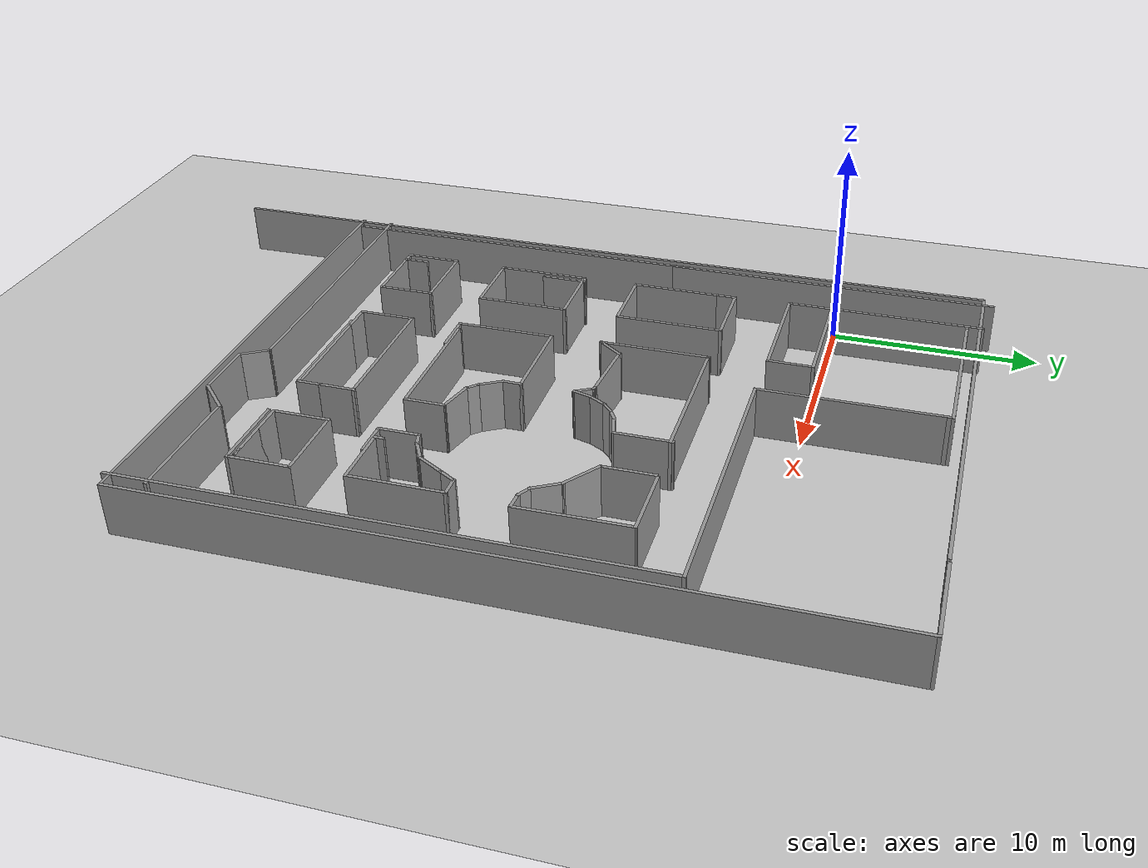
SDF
<sdf version="1.7">
 <world name="default">
  <model name="ground_plane">
   <static>1</static>
   <link name="link">
    <collision name="collision">
     <geometry><plane><normal>0 0 1</normal><size>100 100</size></plane></geometry>
     <surface>
      <contact><collide_bitmask>65535</collide_bitmask></contact>
      <friction><ode><mu>100</mu><mu2>50</mu2></ode></friction>
     </surface>
    </collision>
    <visual name="visual">
     <cast_shadows>0</cast_shadows>
     <geometry><plane><normal>0 0 1</normal><size>100 100</size></plane></geometry>
     <material>
      <script><uri>file://media/materials/scripts/gazebo.material</uri><name>Gazebo/Grey</name></script>
     </material>
    </visual>
   </link>
  </model>
  <model name="bariyers">
   <pose>11.2343 -12.5842 0 0 -0 0</pose>
   <link name="Wall_10">
    <collision name="Wall_10_Collision">
     <geometry><box><size>33.5 0.15 2.5</size></box></geometry>
     <pose>0 0 1.25 0 -0 0</pose>
    </collision>
    <visual name="Wall_10_Visual">
     <pose>0 0 1.25 0 -0 0</pose>
     <geometry><box><size>33.5 0.15 2.5</size></box></geometry>
     <material>
      <script><uri>file://media/materials/scripts/gazebo.material</uri><name>Gazebo/Grey</name></script>
      <ambient>1 1 1 1</ambient>
     </material>
     <meta><layer>0</layer></meta>
    </visual>
    <pose>12.5575 3.03271 0 0 -0 1.5708</pose>
   </link>
   <link name="Wall_100">
    <collision name="Wall_100_Collision">
     <geometry><box><size>1.75 0.15 2.5</size></box></geometry>
     <pose>0 0 1.25 0 -0 0</pose>
    </collision>
    <visual name="Wall_100_Visual">
     <pose>0 0 1.25 0 -0 0</pose>
     <geometry><box><size>1.75 0.15 2.5</size></box></geometry>
     <material>
      <script><uri>file://media/materials/scripts/gazebo.material</uri><name>Gazebo/Grey</name></script>
      <ambient>1 1 1 1</ambient>
     </material>
     <meta><layer>0</layer></meta>
    </visual>
    <pose>2.68549 -2.25618 0 0 -0 2.87979</pose>
   </link>
   <link name="Wall_101">
    <collision name="Wall_101_Collision">
     <geometry><box><size>0.75 0.15 2.5</size></box></geometry>
     <pose>0 0 1.25 0 -0 0</pose>
    </collision>
    <visual name="Wall_101_Visual">
     <pose>0 0 1.25 0 -0 0</pose>
     <geometry><box><size>0.75 0.15 2.5</size></box></geometry>
     <material>
      <script><uri>file://media/materials/scripts/gazebo.material</uri><name>Gazebo/Grey</name></script>
      <ambient>1 1 1 1</ambient>
     </material>
     <meta><layer>0</layer></meta>
    </visual>
    <pose>1.70062 -1.83699 0 0 -0 2.35619</pose>
   </link>
   <link name="Wall_102">
    <collision name="Wall_102_Collision">
     <geometry><box><size>1.25 0.15 2.5</size></box></geometry>
     <pose>0 0 1.25 0 -0 0</pose>
    </collision>
    <visual name="Wall_102_Visual">
     <pose>0 0 1.25 0 -0 0</pose>
     <geometry><box><size>1.25 0.15 2.5</size></box></geometry>
     <material>
      <script><uri>file://media/materials/scripts/gazebo.material</uri><name>Gazebo/Grey</name></script>
      <ambient>1 1 1 1</ambient>
     </material>
     <meta><layer>0</layer></meta>
    </visual>
    <pose>1.21349 -1.14855 0 0 -0 2.0944</pose>
   </link>
   <link name="Wall_103">
    <collision name="Wall_103_Collision">
     <geometry><box><size>1 0.15 2.5</size></box></geometry>
     <pose>0 0 1.25 0 -0 0</pose>
    </collision>
    <visual name="Wall_103_Visual">
     <pose>0 0 1.25 0 -0 0</pose>
     <geometry><box><size>1 0.15 2.5</size></box></geometry>
     <material>
      <script><uri>file://media/materials/scripts/gazebo.material</uri><name>Gazebo/Grey</name></script>
      <ambient>1 1 1 1</ambient>
     </material>
     <meta><layer>0</layer></meta>
    </visual>
    <pose>0.938488 -0.247233 0 0 -0 1.5708</pose>
   </link>
   <link name="Wall_104">
    <collision name="Wall_104_Collision">
     <geometry><box><size>4.5 0.15 2.5</size></box></geometry>
     <pose>0 0 1.25 0 -0 0</pose>
    </collision>
    <visual name="Wall_104_Visual">
     <pose>0 0 1.25 0 -0 0</pose>
     <geometry><box><size>4.5 0.15 2.5</size></box></geometry>
     <material>
      <script><uri>file://media/materials/scripts/gazebo.material</uri><name>Gazebo/Grey</name></script>
      <ambient>1 1 1 1</ambient>
     </material>
     <meta><layer>0</layer></meta>
    </visual>
    <pose>-1.23651 0.177767 0 0 -0 3.14159</pose>
   </link>
   <link name="Wall_105">
    <collision name="Wall_105_Collision">
     <geometry><box><size>4.75 0.15 2.5</size></box></geometry>
     <pose>0 0 1.25 0 -0 0</pose>
    </collision>
    <visual name="Wall_105_Visual">
     <pose>0 0 1.25 0 -0 0</pose>
     <geometry><box><size>4.75 0.15 2.5</size></box></geometry>
     <material>
      <script><uri>file://media/materials/scripts/gazebo.material</uri><name>Gazebo/Grey</name></script>
      <ambient>1 1 1 1</ambient>
     </material>
     <meta><layer>0</layer></meta>
    </visual>
    <pose>-3.41151 -2.12223 0 0 -0 -1.5708</pose>
   </link>
   <link name="Wall_106">
    <collision name="Wall_106_Collision">
     <geometry><box><size>2 0.15 2.5</size></box></geometry>
     <pose>0 0 1.25 0 -0 0</pose>
    </collision>
    <visual name="Wall_106_Visual">
     <pose>0 0 1.25 0 -0 0</pose>
     <geometry><box><size>2 0.15 2.5</size></box></geometry>
     <material>
      <script><uri>file://media/materials/scripts/gazebo.material</uri><name>Gazebo/Grey</name></script>
      <ambient>1 1 1 1</ambient>
     </material>
     <meta><layer>0</layer></meta>
    </visual>
    <pose>-2.48651 -4.42223 0 0 -0 0</pose>
   </link>
   <link name="Wall_109">
    <collision name="Wall_109_Collision">
     <geometry><box><size>8.5 0.15 2.5</size></box></geometry>
     <pose>0 0 1.25 0 -0 0</pose>
    </collision>
    <visual name="Wall_109_Visual">
     <pose>0 0 1.25 0 -0 0</pose>
     <geometry><box><size>8.5 0.15 2.5</size></box></geometry>
     <material>
      <script><uri>file://media/materials/scripts/gazebo.material</uri><name>Gazebo/Grey</name></script>
      <ambient>1 1 1 1</ambient>
     </material>
     <meta><layer>0</layer></meta>
    </visual>
    <pose>-1.45811 14.5463 0 0 -0 -1.5708</pose>
   </link>
   <link name="Wall_11">
    <collision name="Wall_11_Collision">
     <geometry><box><size>4.25 0.15 2.5</size></box></geometry>
     <pose>0 0 1.25 0 -0 0</pose>
    </collision>
    <visual name="Wall_11_Visual">
     <pose>0 0 1.25 0 -0 0</pose>
     <geometry><box><size>4.25 0.15 2.5</size></box></geometry>
     <material>
      <script><uri>file://media/materials/scripts/gazebo.material</uri><name>Gazebo/Grey</name></script>
      <ambient>1 1 1 1</ambient>
     </material>
     <meta><layer>0</layer></meta>
    </visual>
    <pose>10.5075 19.7077 0 0 -0 3.14159</pose>
   </link>
   <link name="Wall_110">
    <collision name="Wall_110_Collision">
     <geometry><box><size>13.4314 0.15 2.5</size></box></geometry>
     <pose>0 0 1.25 0 -0 0</pose>
    </collision>
    <visual name="Wall_110_Visual">
     <pose>0 0 1.25 0 -0 0</pose>
     <geometry><box><size>13.4314 0.15 2.5</size></box></geometry>
     <material>
      <script><uri>file://media/materials/scripts/gazebo.material</uri><name>Gazebo/Grey</name></script>
      <ambient>1 1 1 1</ambient>
     </material>
     <meta><layer>0</layer></meta>
    </visual>
    <pose>5.18256 10.3713 0 0 -0 0</pose>
   </link>
   <link name="Wall_111">
    <collision name="Wall_111_Collision">
     <geometry><box><size>24.5 0.15 2.5</size></box></geometry>
     <pose>0 0 1.25 0 -0 0</pose>
    </collision>
    <visual name="Wall_111_Visual">
     <pose>0 0 1.25 0 -0 0</pose>
     <geometry><box><size>24.5 0.15 2.5</size></box></geometry>
     <material>
      <script><uri>file://media/materials/scripts/gazebo.material</uri><name>Gazebo/Grey</name></script>
      <ambient>1 1 1 1</ambient>
     </material>
     <meta><layer>0</layer></meta>
    </visual>
    <pose>11.8232 -1.80369 0 0 -0 -1.5708</pose>
   </link>
   <link name="Wall_115">
    <collision name="Wall_115_Collision">
     <geometry><box><size>1.25 0.15 2.5</size></box></geometry>
     <pose>0 0 1.25 0 -0 0</pose>
    </collision>
    <visual name="Wall_115_Visual">
     <pose>0 0 1.25 0 -0 0</pose>
     <geometry><box><size>1.25 0.15 2.5</size></box></geometry>
     <material>
      <script><uri>file://media/materials/scripts/gazebo.material</uri><name>Gazebo/Grey</name></script>
      <ambient>1 1 1 1</ambient>
     </material>
     <meta><layer>0</layer></meta>
    </visual>
    <pose>3.00193 5.10047 0 0 -0 -2.87979</pose>
   </link>
   <link name="Wall_116">
    <collision name="Wall_116_Collision">
     <geometry><box><size>0.75 0.15 2.5</size></box></geometry>
     <pose>0 0 1.25 0 -0 0</pose>
    </collision>
    <visual name="Wall_116_Visual">
     <pose>0 0 1.25 0 -0 0</pose>
     <geometry><box><size>0.75 0.15 2.5</size></box></geometry>
     <material>
      <script><uri>file://media/materials/scripts/gazebo.material</uri><name>Gazebo/Grey</name></script>
      <ambient>1 1 1 1</ambient>
     </material>
     <meta><layer>0</layer></meta>
    </visual>
    <pose>2.21086 4.80812 0 0 -0 -2.61799</pose>
   </link>
   <link name="Wall_117">
    <collision name="Wall_117_Collision">
     <geometry><box><size>0.75 0.15 2.5</size></box></geometry>
     <pose>0 0 1.25 0 -0 0</pose>
    </collision>
    <visual name="Wall_117_Visual">
     <pose>0 0 1.25 0 -0 0</pose>
     <geometry><box><size>0.75 0.15 2.5</size></box></geometry>
     <material>
      <script><uri>file://media/materials/scripts/gazebo.material</uri><name>Gazebo/Grey</name></script>
      <ambient>1 1 1 1</ambient>
     </material>
     <meta><layer>0</layer></meta>
    </visual>
    <pose>1.73892 4.44599 0 0 -0 -2.35619</pose>
   </link>
   <link name="Wall_118">
    <collision name="Wall_118_Collision">
     <geometry><box><size>1 0.15 2.5</size></box></geometry>
     <pose>0 0 1.25 0 -0 0</pose>
    </collision>
    <visual name="Wall_118_Visual">
     <pose>0 0 1.25 0 -0 0</pose>
     <geometry><box><size>1 0.15 2.5</size></box></geometry>
     <material>
      <script><uri>file://media/materials/scripts/gazebo.material</uri><name>Gazebo/Grey</name></script>
      <ambient>1 1 1 1</ambient>
     </material>
     <meta><layer>0</layer></meta>
    </visual>
    <pose>1.31429 3.8658 0 0 -0 -2.0944</pose>
   </link>
   <link name="Wall_119">
    <collision name="Wall_119_Collision">
     <geometry><box><size>1 0.15 2.5</size></box></geometry>
     <pose>0 0 1.25 0 -0 0</pose>
    </collision>
    <visual name="Wall_119_Visual">
     <pose>0 0 1.25 0 -0 0</pose>
     <geometry><box><size>1 0.15 2.5</size></box></geometry>
     <material>
      <script><uri>file://media/materials/scripts/gazebo.material</uri><name>Gazebo/Grey</name></script>
      <ambient>1 1 1 1</ambient>
     </material>
     <meta><layer>0</layer></meta>
    </visual>
    <pose>0.991789 3.08722 0 0 -0 -1.8326</pose>
   </link>
   <link name="Wall_120">
    <collision name="Wall_120_Collision">
     <geometry><box><size>1 0.15 2.5</size></box></geometry>
     <pose>0 0 1.25 0 -0 0</pose>
    </collision>
    <visual name="Wall_120_Visual">
     <pose>0 0 1.25 0 -0 0</pose>
     <geometry><box><size>1 0.15 2.5</size></box></geometry>
     <material>
      <script><uri>file://media/materials/scripts/gazebo.material</uri><name>Gazebo/Grey</name></script>
      <ambient>1 1 1 1</ambient>
     </material>
     <meta><layer>0</layer></meta>
    </visual>
    <pose>0.669291 3.04476 0 0 -0 2.0944</pose>
   </link>
   <link name="Wall_121">
    <collision name="Wall_121_Collision">
     <geometry><box><size>0.25 0.15 2.5</size></box></geometry>
     <pose>0 0 1.25 0 -0 0</pose>
    </collision>
    <visual name="Wall_121_Visual">
     <pose>0 0 1.25 0 -0 0</pose>
     <geometry><box><size>0.25 0.15 2.5</size></box></geometry>
     <material>
      <script><uri>file://media/materials/scripts/gazebo.material</uri><name>Gazebo/Grey</name></script>
      <ambient>1 1 1 1</ambient>
     </material>
     <meta><layer>0</layer></meta>
    </visual>
    <pose>0.41349 3.43782 0 0 -0 2.61799</pose>
   </link>
   <link name="Wall_122">
    <collision name="Wall_122_Collision">
     <geometry><box><size>3.29431 0.15 2.5</size></box></geometry>
     <pose>0 0 1.25 0 -0 0</pose>
    </collision>
    <visual name="Wall_122_Visual">
     <pose>0 0 1.25 0 -0 0</pose>
     <geometry><box><size>3.29431 0.15 2.5</size></box></geometry>
     <material>
      <script><uri>file://media/materials/scripts/gazebo.material</uri><name>Gazebo/Grey</name></script>
      <ambient>1 1 1 1</ambient>
     </material>
     <meta><layer>0</layer></meta>
    </visual>
    <pose>-1.19703 3.58726 0 0 -0 3.06235</pose>
   </link>
   <link name="Wall_123">
    <collision name="Wall_123_Collision">
     <geometry><box><size>1.5149 0.15 2.5</size></box></geometry>
     <pose>0 0 1.25 0 -0 0</pose>
    </collision>
    <visual name="Wall_123_Visual">
     <pose>0 0 1.25 0 -0 0</pose>
     <geometry><box><size>1.5149 0.15 2.5</size></box></geometry>
     <material>
      <script><uri>file://media/materials/scripts/gazebo.material</uri><name>Gazebo/Grey</name></script>
      <ambient>1 1 1 1</ambient>
     </material>
     <meta><layer>0</layer></meta>
    </visual>
    <pose>-3.13489 3.1633 0 0 -0 -2.2083</pose>
   </link>
   <link name="Wall_128">
    <collision name="Wall_128_Collision">
     <geometry><box><size>2.75 0.15 2.5</size></box></geometry>
     <pose>0 0 1.25 0 -0 0</pose>
    </collision>
    <visual name="Wall_128_Visual">
     <pose>0 0 1.25 0 -0 0</pose>
     <geometry><box><size>2.75 0.15 2.5</size></box></geometry>
     <material>
      <script><uri>file://media/materials/scripts/gazebo.material</uri><name>Gazebo/Grey</name></script>
      <ambient>1 1 1 1</ambient>
     </material>
     <meta><layer>0</layer></meta>
    </visual>
    <pose>3.53319 6.54282 0 0 -0 1.5708</pose>
   </link>
   <link name="Wall_131">
    <collision name="Wall_131_Collision">
     <geometry><box><size>5.32111 0.15 2.5</size></box></geometry>
     <pose>0 0 1.25 0 -0 0</pose>
    </collision>
    <visual name="Wall_131_Visual">
     <pose>0 0 1.25 0 -0 0</pose>
     <geometry><box><size>5.32111 0.15 2.5</size></box></geometry>
     <material>
      <script><uri>file://media/materials/scripts/gazebo.material</uri><name>Gazebo/Grey</name></script>
      <ambient>1 1 1 1</ambient>
     </material>
     <meta><layer>0</layer></meta>
    </visual>
    <pose>-3.54107 5.20045 0 0 -0 1.5708</pose>
   </link>
   <link name="Wall_132">
    <collision name="Wall_132_Collision">
     <geometry><box><size>7.25 0.15 2.5</size></box></geometry>
     <pose>0 0 1.25 0 -0 0</pose>
    </collision>
    <visual name="Wall_132_Visual">
     <pose>0 0 1.25 0 -0 0</pose>
     <geometry><box><size>7.25 0.15 2.5</size></box></geometry>
     <material>
      <script><uri>file://media/materials/scripts/gazebo.material</uri><name>Gazebo/Grey</name></script>
      <ambient>1 1 1 1</ambient>
     </material>
     <meta><layer>0</layer></meta>
    </visual>
    <pose>0.008928 7.75045 0 0 -0 0</pose>
   </link>
   <link name="Wall_135">
    <collision name="Wall_135_Collision">
     <geometry><box><size>2.5 0.15 2.5</size></box></geometry>
     <pose>0 0 1.25 0 -0 0</pose>
    </collision>
    <visual name="Wall_135_Visual">
     <pose>0 0 1.25 0 -0 0</pose>
     <geometry><box><size>2.5 0.15 2.5</size></box></geometry>
     <material>
      <script><uri>file://media/materials/scripts/gazebo.material</uri><name>Gazebo/Grey</name></script>
      <ambient>1 1 1 1</ambient>
     </material>
     <meta><layer>0</layer></meta>
    </visual>
    <pose>6.01396 6.59675 0 0 -0 -1.5708</pose>
   </link>
   <link name="Wall_136">
    <collision name="Wall_136_Collision">
     <geometry><box><size>2.008 0.15 2.5</size></box></geometry>
     <pose>0 0 1.25 0 -0 0</pose>
    </collision>
    <visual name="Wall_136_Visual">
     <pose>0 0 1.25 0 -0 0</pose>
     <geometry><box><size>2.008 0.15 2.5</size></box></geometry>
     <material>
      <script><uri>file://media/materials/scripts/gazebo.material</uri><name>Gazebo/Grey</name></script>
      <ambient>1 1 1 1</ambient>
     </material>
     <meta><layer>0</layer></meta>
    </visual>
    <pose>6.79735 4.83551 0 0 -0 -0.634766</pose>
   </link>
   <link name="Wall_137">
    <collision name="Wall_137_Collision">
     <geometry><box><size>1.5 0.15 2.5</size></box></geometry>
     <pose>0 0 1.25 0 -0 0</pose>
    </collision>
    <visual name="Wall_137_Visual">
     <pose>0 0 1.25 0 -0 0</pose>
     <geometry><box><size>1.5 0.15 2.5</size></box></geometry>
     <material>
      <script><uri>file://media/materials/scripts/gazebo.material</uri><name>Gazebo/Grey</name></script>
      <ambient>1 1 1 1</ambient>
     </material>
     <meta><layer>0</layer></meta>
    </visual>
    <pose>7.8829 3.70006 0 0 -0 -1.0472</pose>
   </link>
   <link name="Wall_138">
    <collision name="Wall_138_Collision">
     <geometry><box><size>0.75 0.15 2.5</size></box></geometry>
     <pose>0 0 1.25 0 -0 0</pose>
    </collision>
    <visual name="Wall_138_Visual">
     <pose>0 0 1.25 0 -0 0</pose>
     <geometry><box><size>0.75 0.15 2.5</size></box></geometry>
     <material>
      <script><uri>file://media/materials/scripts/gazebo.material</uri><name>Gazebo/Grey</name></script>
      <ambient>1 1 1 1</ambient>
     </material>
     <meta><layer>0</layer></meta>
    </visual>
    <pose>8.4802 2.96549 0 0 -0 -0.523599</pose>
   </link>
   <link name="Wall_139">
    <collision name="Wall_139_Collision">
     <geometry><box><size>0.912152 0.15 2.5</size></box></geometry>
     <pose>0 0 1.25 0 -0 0</pose>
    </collision>
    <visual name="Wall_139_Visual">
     <pose>0 0 1.25 0 -0 0</pose>
     <geometry><box><size>0.912152 0.15 2.5</size></box></geometry>
     <material>
      <script><uri>file://media/materials/scripts/gazebo.material</uri><name>Gazebo/Grey</name></script>
      <ambient>1 1 1 1</ambient>
     </material>
     <meta><layer>0</layer></meta>
    </visual>
    <pose>9.12036 2.79188 0 0 -0 -0.061994</pose>
   </link>
   <link name="Wall_140">
    <collision name="Wall_140_Collision">
     <geometry><box><size>5.25 0.15 2.5</size></box></geometry>
     <pose>0 0 1.25 0 -0 0</pose>
    </collision>
    <visual name="Wall_140_Visual">
     <pose>0 0 1.25 0 -0 0</pose>
     <geometry><box><size>5.25 0.15 2.5</size></box></geometry>
     <material>
      <script><uri>file://media/materials/scripts/gazebo.material</uri><name>Gazebo/Grey</name></script>
      <ambient>1 1 1 1</ambient>
     </material>
     <meta><layer>0</layer></meta>
    </visual>
    <pose>9.51838 5.31827 0 0 -0 1.57981</pose>
   </link>
   <link name="Wall_143">
    <collision name="Wall_143_Collision">
     <geometry><box><size>3.5 0.15 2.5</size></box></geometry>
     <pose>0 0 1.25 0 -0 0</pose>
    </collision>
    <visual name="Wall_143_Visual">
     <pose>0 0 1.25 0 -0 0</pose>
     <geometry><box><size>3.5 0.15 2.5</size></box></geometry>
     <material>
      <script><uri>file://media/materials/scripts/gazebo.material</uri><name>Gazebo/Grey</name></script>
      <ambient>1 1 1 1</ambient>
     </material>
     <meta><layer>0</layer></meta>
    </visual>
    <pose>7.8204 7.86827 0 0 -0 3.14159</pose>
   </link>
   <link name="Wall_145">
    <collision name="Wall_145_Collision">
     <geometry><box><size>6 0.15 2.5</size></box></geometry>
     <pose>0 0 1.25 0 -0 0</pose>
    </collision>
    <visual name="Wall_145_Visual">
     <pose>0 0 1.25 0 -0 0</pose>
     <geometry><box><size>6 0.15 2.5</size></box></geometry>
     <material>
      <script><uri>file://media/materials/scripts/gazebo.material</uri><name>Gazebo/Grey</name></script>
      <ambient>1 1 1 1</ambient>
     </material>
     <meta><layer>0</layer></meta>
    </visual>
    <pose>9.05069 -11.9195 0 0 -0 3.14159</pose>
   </link>
   <link name="Wall_146">
    <collision name="Wall_146_Collision">
     <geometry><box><size>2 0.15 2.5</size></box></geometry>
     <pose>0 0 1.25 0 -0 0</pose>
    </collision>
    <visual name="Wall_146_Visual">
     <pose>0 0 1.25 0 -0 0</pose>
     <geometry><box><size>2 0.15 2.5</size></box></geometry>
     <material>
      <script><uri>file://media/materials/scripts/gazebo.material</uri><name>Gazebo/Grey</name></script>
      <ambient>1 1 1 1</ambient>
     </material>
     <meta><layer>0</layer></meta>
    </visual>
    <pose>5.47162 -12.5735 0 0 -0 -2.35619</pose>
   </link>
   <link name="Wall_147">
    <collision name="Wall_147_Collision">
     <geometry><box><size>3 0.15 2.5</size></box></geometry>
     <pose>0 0 1.25 0 -0 0</pose>
    </collision>
    <visual name="Wall_147_Visual">
     <pose>0 0 1.25 0 -0 0</pose>
     <geometry><box><size>3 0.15 2.5</size></box></geometry>
     <material>
      <script><uri>file://media/materials/scripts/gazebo.material</uri><name>Gazebo/Grey</name></script>
      <ambient>1 1 1 1</ambient>
     </material>
     <meta><layer>0</layer></meta>
    </visual>
    <pose>3.39254 -13.2276 0 0 -0 3.14159</pose>
   </link>
   <link name="Wall_148">
    <collision name="Wall_148_Collision">
     <geometry><box><size>1.5 0.15 2.5</size></box></geometry>
     <pose>0 0 1.25 0 -0 0</pose>
    </collision>
    <visual name="Wall_148_Visual">
     <pose>0 0 1.25 0 -0 0</pose>
     <geometry><box><size>1.5 0.15 2.5</size></box></geometry>
     <material>
      <script><uri>file://media/materials/scripts/gazebo.material</uri><name>Gazebo/Grey</name></script>
      <ambient>1 1 1 1</ambient>
     </material>
     <meta><layer>0</layer></meta>
    </visual>
    <pose>1.63004 -12.643 0 0 -0 2.0944</pose>
   </link>
   <link name="Wall_149">
    <collision name="Wall_149_Collision">
     <geometry><box><size>14 0.15 2.5</size></box></geometry>
     <pose>0 0 1.25 0 -0 0</pose>
    </collision>
    <visual name="Wall_149_Visual">
     <pose>0 0 1.25 0 -0 0</pose>
     <geometry><box><size>14 0.15 2.5</size></box></geometry>
     <material>
      <script><uri>file://media/materials/scripts/gazebo.material</uri><name>Gazebo/Grey</name></script>
      <ambient>1 1 1 1</ambient>
     </material>
     <meta><layer>0</layer></meta>
    </visual>
    <pose>-5.63246 -12.0585 0 0 -0 3.14159</pose>
   </link>
   <link name="Wall_151">
    <collision name="Wall_151_Collision">
     <geometry><box><size>16.25 0.15 2.5</size></box></geometry>
     <pose>0 0 1.25 0 -0 0</pose>
    </collision>
    <visual name="Wall_151_Visual">
     <pose>0 0 1.25 0 -0 0</pose>
     <geometry><box><size>16.25 0.15 2.5</size></box></geometry>
     <material>
      <script><uri>file://media/materials/scripts/gazebo.material</uri><name>Gazebo/Grey</name></script>
      <ambient>1 1 1 1</ambient>
     </material>
     <meta><layer>0</layer></meta>
    </visual>
    <pose>-11.8908 12.1142 0 0 -0 -1.5708</pose>
   </link>
   <link name="Wall_153">
    <collision name="Wall_153_Collision">
     <geometry><box><size>18.5 0.15 2.5</size></box></geometry>
     <pose>0 0 1.25 0 -0 0</pose>
    </collision>
    <visual name="Wall_153_Visual">
     <pose>0 0 1.25 0 -0 0</pose>
     <geometry><box><size>18.5 0.15 2.5</size></box></geometry>
     <material>
      <script><uri>file://media/materials/scripts/gazebo.material</uri><name>Gazebo/Grey</name></script>
      <ambient>1 1 1 1</ambient>
     </material>
     <meta><layer>0</layer></meta>
    </visual>
    <pose>-11.9257 -4.26302 0 0 -0 -1.5708</pose>
   </link>
   <link name="Wall_155">
    <collision name="Wall_155_Collision">
     <geometry><box><size>0.5 0.15 2.5</size></box></geometry>
     <pose>0 0 1.25 0 -0 0</pose>
    </collision>
    <visual name="Wall_155_Visual">
     <pose>0 0 1.25 0 -0 0</pose>
     <geometry><box><size>0.5 0.15 2.5</size></box></geometry>
     <material>
      <script><uri>file://media/materials/scripts/gazebo.material</uri><name>Gazebo/Grey</name></script>
      <ambient>1 1 1 1</ambient>
     </material>
     <meta><layer>0</layer></meta>
    </visual>
    <pose>-1.45811 18.8963 0 0 -0 1.5708</pose>
   </link>
   <link name="Wall_156">
    <collision name="Wall_156_Collision">
     <geometry><box><size>8 0.15 2.5</size></box></geometry>
     <pose>0 0 1.25 0 -0 0</pose>
    </collision>
    <visual name="Wall_156_Visual">
     <pose>0 0 1.25 0 -0 0</pose>
     <geometry><box><size>8 0.15 2.5</size></box></geometry>
     <material>
      <script><uri>file://media/materials/scripts/gazebo.material</uri><name>Gazebo/Grey</name></script>
      <ambient>1 1 1 1</ambient>
     </material>
     <meta><layer>0</layer></meta>
    </visual>
    <pose>-5.38311 19.0713 0 0 -0 3.14159</pose>
   </link>
   <link name="Wall_157">
    <collision name="Wall_157_Collision">
     <geometry><box><size>0.25 0.15 2.5</size></box></geometry>
     <pose>0 0 1.25 0 -0 0</pose>
    </collision>
    <visual name="Wall_157_Visual">
     <pose>0 0 1.25 0 -0 0</pose>
     <geometry><box><size>0.25 0.15 2.5</size></box></geometry>
     <material>
      <script><uri>file://media/materials/scripts/gazebo.material</uri><name>Gazebo/Grey</name></script>
      <ambient>1 1 1 1</ambient>
     </material>
     <meta><layer>0</layer></meta>
    </visual>
    <pose>-9.35811 19.0713 0 0 -0 3.14159</pose>
   </link>
   <link name="Wall_16">
    <collision name="Wall_16_Collision">
     <geometry><box><size>9.5 0.15 2.5</size></box></geometry>
     <pose>0 0 1.25 0 -0 0</pose>
    </collision>
    <visual name="Wall_16_Visual">
     <pose>0 0 1.25 0 -0 0</pose>
     <geometry><box><size>9.5 0.15 2.5</size></box></geometry>
     <material>
      <script><uri>file://media/materials/scripts/gazebo.material</uri><name>Gazebo/Grey</name></script>
      <ambient>1 1 1 1</ambient>
     </material>
     <meta><layer>0</layer></meta>
    </visual>
    <pose>-9.58443 15.1382 0 0 -0 -1.5708</pose>
   </link>
   <link name="Wall_17">
    <collision name="Wall_17_Collision">
     <geometry><box><size>5.75 0.15 2.5</size></box></geometry>
     <pose>0 0 1.25 0 -0 0</pose>
    </collision>
    <visual name="Wall_17_Visual">
     <pose>0 0 1.25 0 -0 0</pose>
     <geometry><box><size>5.75 0.15 2.5</size></box></geometry>
     <material>
      <script><uri>file://media/materials/scripts/gazebo.material</uri><name>Gazebo/Grey</name></script>
      <ambient>1 1 1 1</ambient>
     </material>
     <meta><layer>0</layer></meta>
    </visual>
    <pose>-6.78443 10.4632 0 0 -0 0</pose>
   </link>
   <link name="Wall_19">
    <collision name="Wall_19_Collision">
     <geometry><box><size>2.25 0.15 2.5</size></box></geometry>
     <pose>0 0 1.25 0 -0 0</pose>
    </collision>
    <visual name="Wall_19_Visual">
     <pose>0 0 1.25 0 -0 0</pose>
     <geometry><box><size>2.25 0.15 2.5</size></box></geometry>
     <material>
      <script><uri>file://media/materials/scripts/gazebo.material</uri><name>Gazebo/Grey</name></script>
      <ambient>1 1 1 1</ambient>
     </material>
     <meta><layer>0</layer></meta>
    </visual>
    <pose>-3.98443 11.5132 0 0 -0 1.5708</pose>
   </link>
   <link name="Wall_20">
    <collision name="Wall_20_Collision">
     <geometry><box><size>5.5 0.15 2.5</size></box></geometry>
     <pose>0 0 1.25 0 -0 0</pose>
    </collision>
    <visual name="Wall_20_Visual">
     <pose>0 0 1.25 0 -0 0</pose>
     <geometry><box><size>5.5 0.15 2.5</size></box></geometry>
     <material>
      <script><uri>file://media/materials/scripts/gazebo.material</uri><name>Gazebo/Grey</name></script>
      <ambient>1 1 1 1</ambient>
     </material>
     <meta><layer>0</layer></meta>
    </visual>
    <pose>-6.65943 12.5632 0 0 -0 3.14159</pose>
   </link>
   <link name="Wall_22">
    <collision name="Wall_22_Collision">
     <geometry><box><size>4.25 0.15 2.5</size></box></geometry>
     <pose>0 0 1.25 0 -0 0</pose>
    </collision>
    <visual name="Wall_22_Visual">
     <pose>0 0 1.25 0 -0 0</pose>
     <geometry><box><size>4.25 0.15 2.5</size></box></geometry>
     <material>
      <script><uri>file://media/materials/scripts/gazebo.material</uri><name>Gazebo/Grey</name></script>
      <ambient>1 1 1 1</ambient>
     </material>
     <meta><layer>0</layer></meta>
    </visual>
    <pose>-9.44209 4.7194 0 0 -0 -1.5708</pose>
   </link>
   <link name="Wall_23">
    <collision name="Wall_23_Collision">
     <geometry><box><size>3.5 0.15 2.5</size></box></geometry>
     <pose>0 0 1.25 0 -0 0</pose>
    </collision>
    <visual name="Wall_23_Visual">
     <pose>0 0 1.25 0 -0 0</pose>
     <geometry><box><size>3.5 0.15 2.5</size></box></geometry>
     <material>
      <script><uri>file://media/materials/scripts/gazebo.material</uri><name>Gazebo/Grey</name></script>
      <ambient>1 1 1 1</ambient>
     </material>
     <meta><layer>0</layer></meta>
    </visual>
    <pose>-7.76709 2.6694 0 0 -0 0</pose>
   </link>
   <link name="Wall_24">
    <collision name="Wall_24_Collision">
     <geometry><box><size>5.25 0.15 2.5</size></box></geometry>
     <pose>0 0 1.25 0 -0 0</pose>
    </collision>
    <visual name="Wall_24_Visual">
     <pose>0 0 1.25 0 -0 0</pose>
     <geometry><box><size>5.25 0.15 2.5</size></box></geometry>
     <material>
      <script><uri>file://media/materials/scripts/gazebo.material</uri><name>Gazebo/Grey</name></script>
      <ambient>1 1 1 1</ambient>
     </material>
     <meta><layer>0</layer></meta>
    </visual>
    <pose>-6.09209 5.2194 0 0 -0 1.5708</pose>
   </link>
   <link name="Wall_25">
    <collision name="Wall_25_Collision">
     <geometry><box><size>3.5 0.15 2.5</size></box></geometry>
     <pose>0 0 1.25 0 -0 0</pose>
    </collision>
    <visual name="Wall_25_Visual">
     <pose>0 0 1.25 0 -0 0</pose>
     <geometry><box><size>3.5 0.15 2.5</size></box></geometry>
     <material>
      <script><uri>file://media/materials/scripts/gazebo.material</uri><name>Gazebo/Grey</name></script>
      <ambient>1 1 1 1</ambient>
     </material>
     <meta><layer>0</layer></meta>
    </visual>
    <pose>-7.76709 7.7694 0 0 -0 3.14159</pose>
   </link>
   <link name="Wall_26">
    <collision name="Wall_26_Collision">
     <geometry><box><size>1.15 0.15 2.5</size></box></geometry>
     <pose>0 0 1.25 0 -0 0</pose>
    </collision>
    <visual name="Wall_26_Visual">
     <pose>0 0 1.25 0 -0 0</pose>
     <geometry><box><size>1.15 0.15 2.5</size></box></geometry>
     <material>
      <script><uri>file://media/materials/scripts/gazebo.material</uri><name>Gazebo/Grey</name></script>
      <ambient>1 1 1 1</ambient>
     </material>
     <meta><layer>0</layer></meta>
    </visual>
    <pose>-9.44209 7.2694 0 0 -0 -1.5708</pose>
   </link>
   <link name="Wall_28">
    <collision name="Wall_28_Collision">
     <geometry><box><size>2.25 0.15 2.5</size></box></geometry>
     <pose>0 0 1.25 0 -0 0</pose>
    </collision>
    <visual name="Wall_28_Visual">
     <pose>0 0 1.25 0 -0 0</pose>
     <geometry><box><size>2.25 0.15 2.5</size></box></geometry>
     <material>
      <script><uri>file://media/materials/scripts/gazebo.material</uri><name>Gazebo/Grey</name></script>
      <ambient>1 1 1 1</ambient>
     </material>
     <meta><layer>0</layer></meta>
    </visual>
    <pose>-9.06372 -0.990087 0 0 -0 1.5708</pose>
   </link>
   <link name="Wall_29">
    <collision name="Wall_29_Collision">
     <geometry><box><size>0.5 0.15 2.5</size></box></geometry>
     <pose>0 0 1.25 0 -0 0</pose>
    </collision>
    <visual name="Wall_29_Visual">
     <pose>0 0 1.25 0 -0 0</pose>
     <geometry><box><size>0.5 0.15 2.5</size></box></geometry>
     <material>
      <script><uri>file://media/materials/scripts/gazebo.material</uri><name>Gazebo/Grey</name></script>
      <ambient>1 1 1 1</ambient>
     </material>
     <meta><layer>0</layer></meta>
    </visual>
    <pose>-9.23276 0.01462 0 0 -0 -2.87979</pose>
   </link>
   <link name="Wall_30">
    <collision name="Wall_30_Collision">
     <geometry><box><size>4.5 0.15 2.5</size></box></geometry>
     <pose>0 0 1.25 0 -0 0</pose>
    </collision>
    <visual name="Wall_30_Visual">
     <pose>0 0 1.25 0 -0 0</pose>
     <geometry><box><size>4.5 0.15 2.5</size></box></geometry>
     <material>
      <script><uri>file://media/materials/scripts/gazebo.material</uri><name>Gazebo/Grey</name></script>
      <ambient>1 1 1 1</ambient>
     </material>
     <meta><layer>0</layer></meta>
    </visual>
    <pose>-9.40179 -2.20567 0 0 -0 -1.5708</pose>
   </link>
   <link name="Wall_31">
    <collision name="Wall_31_Collision">
     <geometry><box><size>3.5 0.15 2.5</size></box></geometry>
     <pose>0 0 1.25 0 -0 0</pose>
    </collision>
    <visual name="Wall_31_Visual">
     <pose>0 0 1.25 0 -0 0</pose>
     <geometry><box><size>3.5 0.15 2.5</size></box></geometry>
     <material>
      <script><uri>file://media/materials/scripts/gazebo.material</uri><name>Gazebo/Grey</name></script>
      <ambient>1 1 1 1</ambient>
     </material>
     <meta><layer>0</layer></meta>
    </visual>
    <pose>-7.72679 -4.38067 0 0 -0 0</pose>
   </link>
   <link name="Wall_32">
    <collision name="Wall_32_Collision">
     <geometry><box><size>4.5 0.15 2.5</size></box></geometry>
     <pose>0 0 1.25 0 -0 0</pose>
    </collision>
    <visual name="Wall_32_Visual">
     <pose>0 0 1.25 0 -0 0</pose>
     <geometry><box><size>4.5 0.15 2.5</size></box></geometry>
     <material>
      <script><uri>file://media/materials/scripts/gazebo.material</uri><name>Gazebo/Grey</name></script>
      <ambient>1 1 1 1</ambient>
     </material>
     <meta><layer>0</layer></meta>
    </visual>
    <pose>-6.05179 -2.20567 0 0 -0 1.5708</pose>
   </link>
   <link name="Wall_33">
    <collision name="Wall_33_Collision">
     <geometry><box><size>3.5 0.15 2.5</size></box></geometry>
     <pose>0 0 1.25 0 -0 0</pose>
    </collision>
    <visual name="Wall_33_Visual">
     <pose>0 0 1.25 0 -0 0</pose>
     <geometry><box><size>3.5 0.15 2.5</size></box></geometry>
     <material>
      <script><uri>file://media/materials/scripts/gazebo.material</uri><name>Gazebo/Grey</name></script>
      <ambient>1 1 1 1</ambient>
     </material>
     <meta><layer>0</layer></meta>
    </visual>
    <pose>-7.72679 -0.030674 0 0 -0 3.14159</pose>
   </link>
   <link name="Wall_36">
    <collision name="Wall_36_Collision">
     <geometry><box><size>1.25 0.15 2.5</size></box></geometry>
     <pose>0 0 1.25 0 -0 0</pose>
    </collision>
    <visual name="Wall_36_Visual">
     <pose>0 0 1.25 0 -0 0</pose>
     <geometry><box><size>1.25 0.15 2.5</size></box></geometry>
     <material>
      <script><uri>file://media/materials/scripts/gazebo.material</uri><name>Gazebo/Grey</name></script>
      <ambient>1 1 1 1</ambient>
     </material>
     <meta><layer>0</layer></meta>
    </visual>
    <pose>-8.93997 -9.02532 0 0 -0 -1.5708</pose>
   </link>
   <link name="Wall_37">
    <collision name="Wall_37_Collision">
     <geometry><box><size>3.25 0.15 2.5</size></box></geometry>
     <pose>0 0 1.25 0 -0 0</pose>
    </collision>
    <visual name="Wall_37_Visual">
     <pose>0 0 1.25 0 -0 0</pose>
     <geometry><box><size>3.25 0.15 2.5</size></box></geometry>
     <material>
      <script><uri>file://media/materials/scripts/gazebo.material</uri><name>Gazebo/Grey</name></script>
      <ambient>1 1 1 1</ambient>
     </material>
     <meta><layer>0</layer></meta>
    </visual>
    <pose>-7.38997 -9.57532 0 0 -0 0</pose>
   </link>
   <link name="Wall_38">
    <collision name="Wall_38_Collision">
     <geometry><box><size>2.75 0.15 2.5</size></box></geometry>
     <pose>0 0 1.25 0 -0 0</pose>
    </collision>
    <visual name="Wall_38_Visual">
     <pose>0 0 1.25 0 -0 0</pose>
     <geometry><box><size>2.75 0.15 2.5</size></box></geometry>
     <material>
      <script><uri>file://media/materials/scripts/gazebo.material</uri><name>Gazebo/Grey</name></script>
      <ambient>1 1 1 1</ambient>
     </material>
     <meta><layer>0</layer></meta>
    </visual>
    <pose>-5.83997 -8.27532 0 0 -0 1.5708</pose>
   </link>
   <link name="Wall_39">
    <collision name="Wall_39_Collision">
     <geometry><box><size>3.75 0.15 2.5</size></box></geometry>
     <pose>0 0 1.25 0 -0 0</pose>
    </collision>
    <visual name="Wall_39_Visual">
     <pose>0 0 1.25 0 -0 0</pose>
     <geometry><box><size>3.75 0.15 2.5</size></box></geometry>
     <material>
      <script><uri>file://media/materials/scripts/gazebo.material</uri><name>Gazebo/Grey</name></script>
      <ambient>1 1 1 1</ambient>
     </material>
     <meta><layer>0</layer></meta>
    </visual>
    <pose>-7.63997 -6.97532 0 0 -0 3.14159</pose>
   </link>
   <link name="Wall_40">
    <collision name="Wall_40_Collision">
     <geometry><box><size>2.75 0.15 2.5</size></box></geometry>
     <pose>0 0 1.25 0 -0 0</pose>
    </collision>
    <visual name="Wall_40_Visual">
     <pose>0 0 1.25 0 -0 0</pose>
     <geometry><box><size>2.75 0.15 2.5</size></box></geometry>
     <material>
      <script><uri>file://media/materials/scripts/gazebo.material</uri><name>Gazebo/Grey</name></script>
      <ambient>1 1 1 1</ambient>
     </material>
     <meta><layer>0</layer></meta>
    </visual>
    <pose>-9.43997 -8.27532 0 0 -0 -1.5708</pose>
   </link>
   <link name="Wall_41">
    <collision name="Wall_41_Collision">
     <geometry><box><size>0.65 0.15 2.5</size></box></geometry>
     <pose>0 0 1.25 0 -0 0</pose>
    </collision>
    <visual name="Wall_41_Visual">
     <pose>0 0 1.25 0 -0 0</pose>
     <geometry><box><size>0.65 0.15 2.5</size></box></geometry>
     <material>
      <script><uri>file://media/materials/scripts/gazebo.material</uri><name>Gazebo/Grey</name></script>
      <ambient>1 1 1 1</ambient>
     </material>
     <meta><layer>0</layer></meta>
    </visual>
    <pose>-9.18997 -9.57532 0 0 -0 0</pose>
   </link>
   <link name="Wall_6">
    <collision name="Wall_6_Collision">
     <geometry><box><size>20.75 0.15 2.5</size></box></geometry>
     <pose>0 0 1.25 0 -0 0</pose>
    </collision>
    <visual name="Wall_6_Visual">
     <pose>0 0 1.25 0 -0 0</pose>
     <geometry><box><size>20.75 0.15 2.5</size></box></geometry>
     <material>
      <script><uri>file://media/materials/scripts/gazebo.material</uri><name>Gazebo/Grey</name></script>
      <ambient>1 1 1 1</ambient>
     </material>
     <meta><layer>0</layer></meta>
    </visual>
    <pose>-2.13704 19.6858 0 0 -0 3.14159</pose>
   </link>
   <link name="Wall_7">
    <collision name="Wall_7_Collision">
     <geometry><box><size>40 0.15 2.5</size></box></geometry>
     <pose>0 0 1.25 0 -0 0</pose>
    </collision>
    <visual name="Wall_7_Visual">
     <pose>0 0 1.25 0 -0 0</pose>
     <geometry><box><size>40 0.15 2.5</size></box></geometry>
     <material>
      <script><uri>file://media/materials/scripts/gazebo.material</uri><name>Gazebo/Grey</name></script>
      <ambient>1 1 1 1</ambient>
     </material>
     <meta><layer>0</layer></meta>
    </visual>
    <pose>-12.437 -0.239152 0 0 -0 -1.5708</pose>
   </link>
   <link name="Wall_71">
    <collision name="Wall_71_Collision">
     <geometry><box><size>5.75 0.15 2.5</size></box></geometry>
     <pose>0 0 1.25 0 -0 0</pose>
    </collision>
    <visual name="Wall_71_Visual">
     <pose>0 0 1.25 0 -0 0</pose>
     <geometry><box><size>5.75 0.15 2.5</size></box></geometry>
     <material>
      <script><uri>file://media/materials/scripts/gazebo.material</uri><name>Gazebo/Grey</name></script>
      <ambient>1 1 1 1</ambient>
     </material>
     <meta><layer>0</layer></meta>
    </visual>
    <pose>0.560582 -9.54418 0 0 -0 0</pose>
   </link>
   <link name="Wall_72">
    <collision name="Wall_72_Collision">
     <geometry><box><size>1.25 0.15 2.5</size></box></geometry>
     <pose>0 0 1.25 0 -0 0</pose>
    </collision>
    <visual name="Wall_72_Visual">
     <pose>0 0 1.25 0 -0 0</pose>
     <geometry><box><size>1.25 0.15 2.5</size></box></geometry>
     <material>
      <script><uri>file://media/materials/scripts/gazebo.material</uri><name>Gazebo/Grey</name></script>
      <ambient>1 1 1 1</ambient>
     </material>
     <meta><layer>0</layer></meta>
    </visual>
    <pose>3.36058 -8.99418 0 0 -0 1.5708</pose>
   </link>
   <link name="Wall_74">
    <collision name="Wall_74_Collision">
     <geometry><box><size>1.75 0.15 2.5</size></box></geometry>
     <pose>0 0 1.25 0 -0 0</pose>
    </collision>
    <visual name="Wall_74_Visual">
     <pose>0 0 1.25 0 -0 0</pose>
     <geometry><box><size>1.75 0.15 2.5</size></box></geometry>
     <material>
      <script><uri>file://media/materials/scripts/gazebo.material</uri><name>Gazebo/Grey</name></script>
      <ambient>1 1 1 1</ambient>
     </material>
     <meta><layer>0</layer></meta>
    </visual>
    <pose>3.36058 -7.64418 0 0 -0 1.5708</pose>
   </link>
   <link name="Wall_75">
    <collision name="Wall_75_Collision">
     <geometry><box><size>6.75 0.15 2.5</size></box></geometry>
     <pose>0 0 1.25 0 -0 0</pose>
    </collision>
    <visual name="Wall_75_Visual">
     <pose>0 0 1.25 0 -0 0</pose>
     <geometry><box><size>6.75 0.15 2.5</size></box></geometry>
     <material>
      <script><uri>file://media/materials/scripts/gazebo.material</uri><name>Gazebo/Grey</name></script>
      <ambient>1 1 1 1</ambient>
     </material>
     <meta><layer>0</layer></meta>
    </visual>
    <pose>0.060582 -6.84418 0 0 -0 3.14159</pose>
   </link>
   <link name="Wall_76">
    <collision name="Wall_76_Collision">
     <geometry><box><size>2.75 0.15 2.5</size></box></geometry>
     <pose>0 0 1.25 0 -0 0</pose>
    </collision>
    <visual name="Wall_76_Visual">
     <pose>0 0 1.25 0 -0 0</pose>
     <geometry><box><size>2.75 0.15 2.5</size></box></geometry>
     <material>
      <script><uri>file://media/materials/scripts/gazebo.material</uri><name>Gazebo/Grey</name></script>
      <ambient>1 1 1 1</ambient>
     </material>
     <meta><layer>0</layer></meta>
    </visual>
    <pose>-3.23942 -8.14418 0 0 -0 -1.5708</pose>
   </link>
   <link name="Wall_77">
    <collision name="Wall_77_Collision">
     <geometry><box><size>1.5 0.15 2.5</size></box></geometry>
     <pose>0 0 1.25 0 -0 0</pose>
    </collision>
    <visual name="Wall_77_Visual">
     <pose>0 0 1.25 0 -0 0</pose>
     <geometry><box><size>1.5 0.15 2.5</size></box></geometry>
     <material>
      <script><uri>file://media/materials/scripts/gazebo.material</uri><name>Gazebo/Grey</name></script>
      <ambient>1 1 1 1</ambient>
     </material>
     <meta><layer>0</layer></meta>
    </visual>
    <pose>-2.56442 -9.44418 0 0 -0 0</pose>
   </link>
   <link name="Wall_78">
    <collision name="Wall_78_Collision">
     <geometry><box><size>5.25 0.15 2.5</size></box></geometry>
     <pose>0 0 1.25 0 -0 0</pose>
    </collision>
    <visual name="Wall_78_Visual">
     <pose>0 0 1.25 0 -0 0</pose>
     <geometry><box><size>5.25 0.15 2.5</size></box></geometry>
     <material>
      <script><uri>file://media/materials/scripts/gazebo.material</uri><name>Gazebo/Grey</name></script>
      <ambient>1 1 1 1</ambient>
     </material>
     <meta><layer>0</layer></meta>
    </visual>
    <pose>0.660582 -9.44418 0 0 -0 0</pose>
   </link>
   <link name="Wall_80">
    <collision name="Wall_80_Collision">
     <geometry><box><size>2.25 0.15 2.5</size></box></geometry>
     <pose>0 0 1.25 0 -0 0</pose>
    </collision>
    <visual name="Wall_80_Visual">
     <pose>0 0 1.25 0 -0 0</pose>
     <geometry><box><size>2.25 0.15 2.5</size></box></geometry>
     <material>
      <script><uri>file://media/materials/scripts/gazebo.material</uri><name>Gazebo/Grey</name></script>
      <ambient>1 1 1 1</ambient>
     </material>
     <meta><layer>0</layer></meta>
    </visual>
    <pose>8.14537 -9.44947 0 0 -0 0</pose>
   </link>
   <link name="Wall_81">
    <collision name="Wall_81_Collision">
     <geometry><box><size>3.5 0.15 2.5</size></box></geometry>
     <pose>0 0 1.25 0 -0 0</pose>
    </collision>
    <visual name="Wall_81_Visual">
     <pose>0 0 1.25 0 -0 0</pose>
     <geometry><box><size>3.5 0.15 2.5</size></box></geometry>
     <material>
      <script><uri>file://media/materials/scripts/gazebo.material</uri><name>Gazebo/Grey</name></script>
      <ambient>1 1 1 1</ambient>
     </material>
     <meta><layer>0</layer></meta>
    </visual>
    <pose>7.52037 -9.44947 0 0 -0 3.14159</pose>
   </link>
   <link name="Wall_82">
    <collision name="Wall_82_Collision">
     <geometry><box><size>2.75 0.15 2.5</size></box></geometry>
     <pose>0 0 1.25 0 -0 0</pose>
    </collision>
    <visual name="Wall_82_Visual">
     <pose>0 0 1.25 0 -0 0</pose>
     <geometry><box><size>2.75 0.15 2.5</size></box></geometry>
     <material>
      <script><uri>file://media/materials/scripts/gazebo.material</uri><name>Gazebo/Grey</name></script>
      <ambient>1 1 1 1</ambient>
     </material>
     <meta><layer>0</layer></meta>
    </visual>
    <pose>5.84537 -8.14948 0 0 -0 1.5708</pose>
   </link>
   <link name="Wall_83">
    <collision name="Wall_83_Collision">
     <geometry><box><size>3.75 0.15 2.5</size></box></geometry>
     <pose>0 0 1.25 0 -0 0</pose>
    </collision>
    <visual name="Wall_83_Visual">
     <pose>0 0 1.25 0 -0 0</pose>
     <geometry><box><size>3.75 0.15 2.5</size></box></geometry>
     <material>
      <script><uri>file://media/materials/scripts/gazebo.material</uri><name>Gazebo/Grey</name></script>
      <ambient>1 1 1 1</ambient>
     </material>
     <meta><layer>0</layer></meta>
    </visual>
    <pose>7.64537 -6.84947 0 0 -0 0</pose>
   </link>
   <link name="Wall_84">
    <collision name="Wall_84_Collision">
     <geometry><box><size>3 0.15 2.5</size></box></geometry>
     <pose>0 0 1.25 0 -0 0</pose>
    </collision>
    <visual name="Wall_84_Visual">
     <pose>0 0 1.25 0 -0 0</pose>
     <geometry><box><size>3 0.15 2.5</size></box></geometry>
     <material>
      <script><uri>file://media/materials/scripts/gazebo.material</uri><name>Gazebo/Grey</name></script>
      <ambient>1 1 1 1</ambient>
     </material>
     <meta><layer>0</layer></meta>
    </visual>
    <pose>9.44537 -8.27448 0 0 -0 -1.5708</pose>
   </link>
   <link name="Wall_85">
    <collision name="Wall_85_Collision">
     <geometry><box><size>3.75 0.15 2.5</size></box></geometry>
     <pose>0 0 1.25 0 -0 0</pose>
    </collision>
    <visual name="Wall_85_Visual">
     <pose>0 0 1.25 0 -0 0</pose>
     <geometry><box><size>3.75 0.15 2.5</size></box></geometry>
     <material>
      <script><uri>file://media/materials/scripts/gazebo.material</uri><name>Gazebo/Grey</name></script>
      <ambient>1 1 1 1</ambient>
     </material>
     <meta><layer>0</layer></meta>
    </visual>
    <pose>7.64537 -9.69947 0 0 -0 3.14159</pose>
   </link>
   <link name="Wall_87">
    <collision name="Wall_87_Collision">
     <geometry><box><size>0.5 0.15 2.5</size></box></geometry>
     <pose>0 0 1.25 0 -0 0</pose>
    </collision>
    <visual name="Wall_87_Visual">
     <pose>0 0 1.25 0 -0 0</pose>
     <geometry><box><size>0.5 0.15 2.5</size></box></geometry>
     <material>
      <script><uri>file://media/materials/scripts/gazebo.material</uri><name>Gazebo/Grey</name></script>
      <ambient>1 1 1 1</ambient>
     </material>
     <meta><layer>0</layer></meta>
    </visual>
    <pose>6.52467 -4.20289 0 0 -0 -1.5708</pose>
   </link>
   <link name="Wall_88">
    <collision name="Wall_88_Collision">
     <geometry><box><size>3 0.15 2.5</size></box></geometry>
     <pose>0 0 1.25 0 -0 0</pose>
    </collision>
    <visual name="Wall_88_Visual">
     <pose>0 0 1.25 0 -0 0</pose>
     <geometry><box><size>3 0.15 2.5</size></box></geometry>
     <material>
      <script><uri>file://media/materials/scripts/gazebo.material</uri><name>Gazebo/Grey</name></script>
      <ambient>1 1 1 1</ambient>
     </material>
     <meta><layer>0</layer></meta>
    </visual>
    <pose>7.94967 -4.37789 0 0 -0 0</pose>
   </link>
   <link name="Wall_89">
    <collision name="Wall_89_Collision">
     <geometry><box><size>4.5 0.15 2.5</size></box></geometry>
     <pose>0 0 1.25 0 -0 0</pose>
    </collision>
    <visual name="Wall_89_Visual">
     <pose>0 0 1.25 0 -0 0</pose>
     <geometry><box><size>4.5 0.15 2.5</size></box></geometry>
     <material>
      <script><uri>file://media/materials/scripts/gazebo.material</uri><name>Gazebo/Grey</name></script>
      <ambient>1 1 1 1</ambient>
     </material>
     <meta><layer>0</layer></meta>
    </visual>
    <pose>9.37467 -2.20289 0 0 -0 1.5708</pose>
   </link>
   <link name="Wall_9">
    <collision name="Wall_9_Collision">
     <geometry><box><size>25.25 0.15 2.5</size></box></geometry>
     <pose>0 0 1.25 0 -0 0</pose>
    </collision>
    <visual name="Wall_9_Visual">
     <pose>0 0 1.25 0 -0 0</pose>
     <geometry><box><size>25.25 0.15 2.5</size></box></geometry>
     <material>
      <script><uri>file://media/materials/scripts/gazebo.material</uri><name>Gazebo/Grey</name></script>
      <ambient>1 1 1 1</ambient>
     </material>
     <meta><layer>0</layer></meta>
    </visual>
    <pose>0.007453 -13.6423 0 0 -0 0</pose>
   </link>
   <link name="Wall_90">
    <collision name="Wall_90_Collision">
     <geometry><box><size>1 0.15 2.5</size></box></geometry>
     <pose>0 0 1.25 0 -0 0</pose>
    </collision>
    <visual name="Wall_90_Visual">
     <pose>0 0 1.25 0 -0 0</pose>
     <geometry><box><size>1 0.15 2.5</size></box></geometry>
     <material>
      <script><uri>file://media/materials/scripts/gazebo.material</uri><name>Gazebo/Grey</name></script>
      <ambient>1 1 1 1</ambient>
     </material>
     <meta><layer>0</layer></meta>
    </visual>
    <pose>8.94967 -0.027888 0 0 -0 3.14159</pose>
   </link>
   <link name="Wall_91">
    <collision name="Wall_91_Collision">
     <geometry><box><size>1 0.15 2.5</size></box></geometry>
     <pose>0 0 1.25 0 -0 0</pose>
    </collision>
    <visual name="Wall_91_Visual">
     <pose>0 0 1.25 0 -0 0</pose>
     <geometry><box><size>1 0.15 2.5</size></box></geometry>
     <material>
      <script><uri>file://media/materials/scripts/gazebo.material</uri><name>Gazebo/Grey</name></script>
      <ambient>1 1 1 1</ambient>
     </material>
     <meta><layer>0</layer></meta>
    </visual>
    <pose>8.31217 -0.395949 0 0 -0 -2.0944</pose>
   </link>
   <link name="Wall_92">
    <collision name="Wall_92_Collision">
     <geometry><box><size>1.5 0.15 2.5</size></box></geometry>
     <pose>0 0 1.25 0 -0 0</pose>
    </collision>
    <visual name="Wall_92_Visual">
     <pose>0 0 1.25 0 -0 0</pose>
     <geometry><box><size>1.5 0.15 2.5</size></box></geometry>
     <material>
      <script><uri>file://media/materials/scripts/gazebo.material</uri><name>Gazebo/Grey</name></script>
      <ambient>1 1 1 1</ambient>
     </material>
     <meta><layer>0</layer></meta>
    </visual>
    <pose>7.76217 -1.34858 0 0 -0 -2.0944</pose>
   </link>
   <link name="Wall_93">
    <collision name="Wall_93_Collision">
     <geometry><box><size>1.25 0.15 2.5</size></box></geometry>
     <pose>0 0 1.25 0 -0 0</pose>
    </collision>
    <visual name="Wall_93_Visual">
     <pose>0 0 1.25 0 -0 0</pose>
     <geometry><box><size>1.25 0.15 2.5</size></box></geometry>
     <material>
      <script><uri>file://media/materials/scripts/gazebo.material</uri><name>Gazebo/Grey</name></script>
      <ambient>1 1 1 1</ambient>
     </material>
     <meta><layer>0</layer></meta>
    </visual>
    <pose>6.94836 -2.20814 0 0 -0 -2.61799</pose>
   </link>
   <link name="Wall_94">
    <collision name="Wall_94_Collision">
     <geometry><box><size>0.75 0.15 2.5</size></box></geometry>
     <pose>0 0 1.25 0 -0 0</pose>
    </collision>
    <visual name="Wall_94_Visual">
     <pose>0 0 1.25 0 -0 0</pose>
     <geometry><box><size>0.75 0.15 2.5</size></box></geometry>
     <material>
      <script><uri>file://media/materials/scripts/gazebo.material</uri><name>Gazebo/Grey</name></script>
      <ambient>1 1 1 1</ambient>
     </material>
     <meta><layer>0</layer></meta>
    </visual>
    <pose>6.18227 -2.56079 0 0 -0 -2.87979</pose>
   </link>
   <link name="Wall_95">
    <collision name="Wall_95_Collision">
     <geometry><box><size>2 0.15 2.5</size></box></geometry>
     <pose>0 0 1.25 0 -0 0</pose>
    </collision>
    <visual name="Wall_95_Visual">
     <pose>0 0 1.25 0 -0 0</pose>
     <geometry><box><size>2 0.15 2.5</size></box></geometry>
     <material>
      <script><uri>file://media/materials/scripts/gazebo.material</uri><name>Gazebo/Grey</name></script>
      <ambient>1 1 1 1</ambient>
     </material>
     <meta><layer>0</layer></meta>
    </visual>
    <pose>5.89249 -3.56344 0 0 -0 -1.5708</pose>
   </link>
   <link name="Wall_96">
    <collision name="Wall_96_Collision">
     <geometry><box><size>1.75 0.15 2.5</size></box></geometry>
     <pose>0 0 1.25 0 -0 0</pose>
    </collision>
    <visual name="Wall_96_Visual">
     <pose>0 0 1.25 0 -0 0</pose>
     <geometry><box><size>1.75 0.15 2.5</size></box></geometry>
     <material>
      <script><uri>file://media/materials/scripts/gazebo.material</uri><name>Gazebo/Grey</name></script>
      <ambient>1 1 1 1</ambient>
     </material>
     <meta><layer>0</layer></meta>
    </visual>
    <pose>6.69249 -4.48844 0 0 -0 0</pose>
   </link>
   <link name="Wall_98">
    <collision name="Wall_98_Collision">
     <geometry><box><size>6.5 0.15 2.5</size></box></geometry>
     <pose>0 0 1.25 0 -0 0</pose>
    </collision>
    <visual name="Wall_98_Visual">
     <pose>0 0 1.25 0 -0 0</pose>
     <geometry><box><size>6.5 0.15 2.5</size></box></geometry>
     <material>
      <script><uri>file://media/materials/scripts/gazebo.material</uri><name>Gazebo/Grey</name></script>
      <ambient>1 1 1 1</ambient>
     </material>
     <meta><layer>0</layer></meta>
    </visual>
    <pose>0.283233 -4.31323 0 0 -0 0</pose>
   </link>
   <link name="Wall_99">
    <collision name="Wall_99_Collision">
     <geometry><box><size>2 0.15 2.5</size></box></geometry>
     <pose>0 0 1.25 0 -0 0</pose>
    </collision>
    <visual name="Wall_99_Visual">
     <pose>0 0 1.25 0 -0 0</pose>
     <geometry><box><size>2 0.15 2.5</size></box></geometry>
     <material>
      <script><uri>file://media/materials/scripts/gazebo.material</uri><name>Gazebo/Grey</name></script>
      <ambient>1 1 1 1</ambient>
     </material>
     <meta><layer>0</layer></meta>
    </visual>
    <pose>3.45823 -3.38823 0 0 -0 1.5708</pose>
   </link>
   <static>1</static>
  </model>
 </world>
</sdf>
